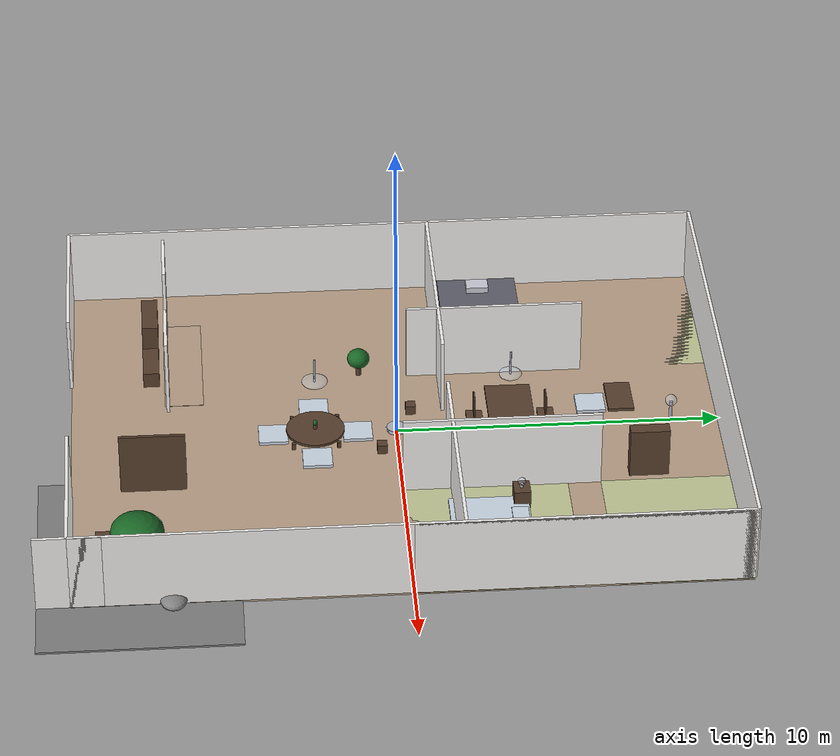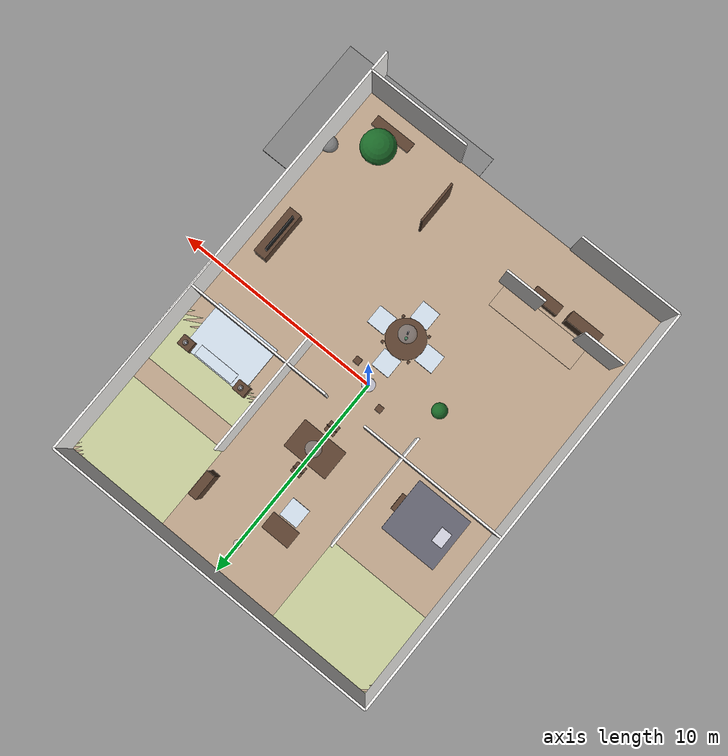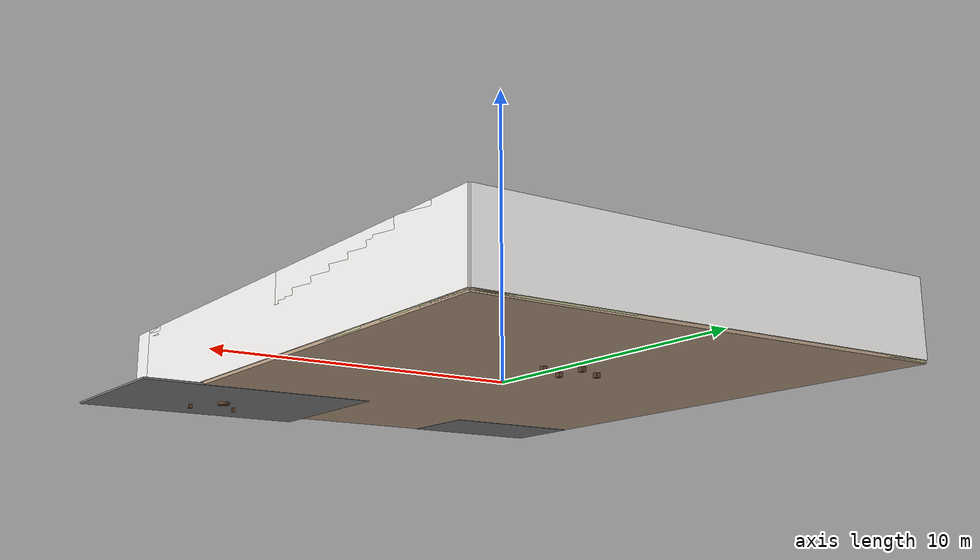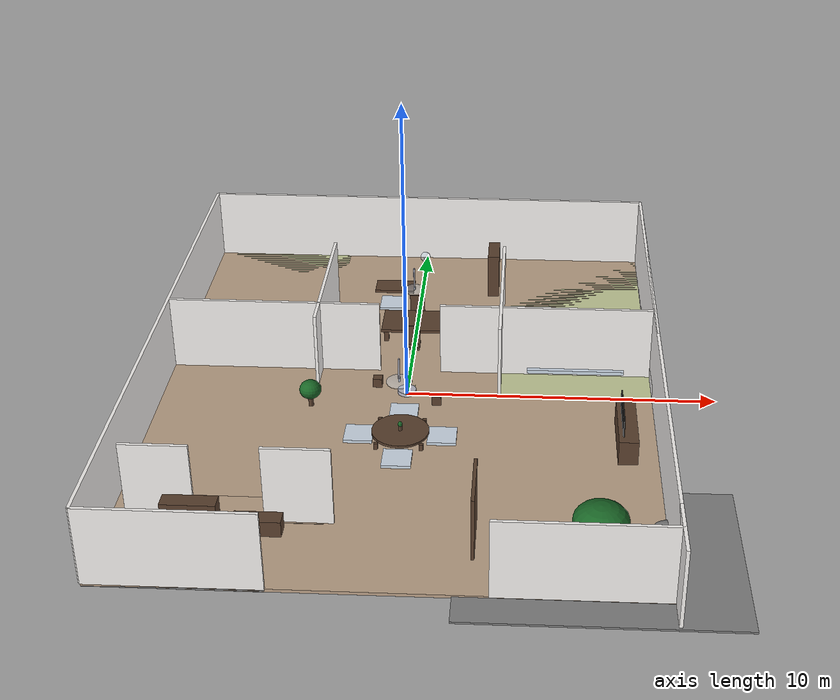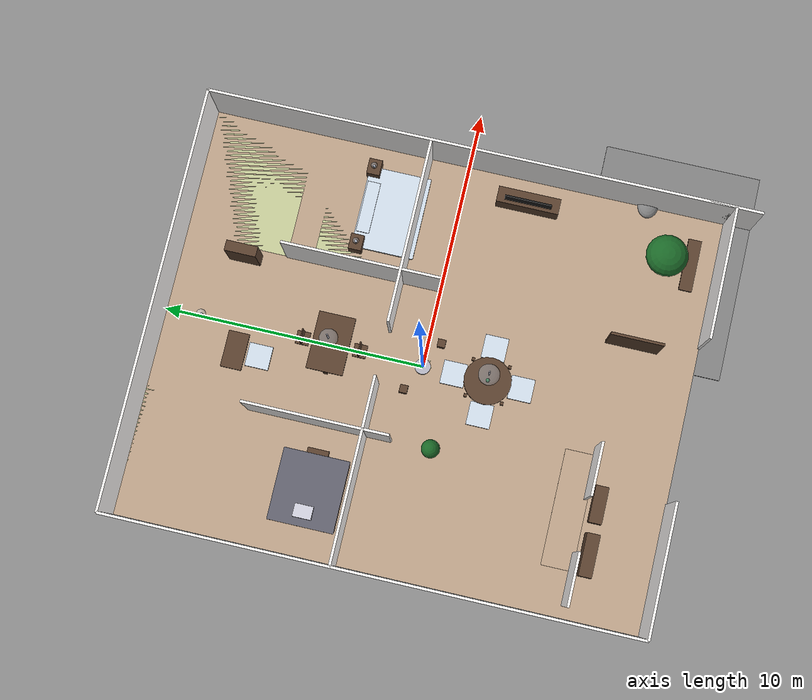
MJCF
<mujoco model="Japanese_320m2_Home">
  <compiler angle="degree" coordinate="local" inertiafromgeom="true"/>
  <option timestep="0.005" gravity="0 0 -9.81" density="1.2"/>

  <visual>
    <global offwidth="1920" offheight="1080" azimuth="140" elevation="-20"/>
    <quality shadowsize="4096"/>
    <map fogstart="25" fogend="40" znear="0.1"/>
  </visual>

  <default>
    <geom condim="3" friction="0.8 0.1 0.1" solimp="0.9 0.95 0.001" solref="0.02 1"/>
    <joint damping="1"/>
  </default>

  <asset>
    <texture name="tex_sky" type="skybox" builtin="gradient" rgb1="0.8 0.9 1.0" rgb2="0.6 0.8 0.9" width="512" height="512"/>

    <texture name="tex_floor_wood" type="2d" builtin="checker" rgb1="0.75 0.65 0.55" rgb2="0.7 0.6 0.5" width="512" height="512"/>
    <material name="mat_floor_wood" texture="tex_floor_wood" texrepeat="6 8" reflectance="0.2" specular="0.2"/>

    <texture name="tex_tatami" type="2d" builtin="checker" rgb1="0.78 0.8 0.6" rgb2="0.74 0.77 0.58" width="512" height="512"/>
    <material name="mat_tatami" texture="tex_tatami" texrepeat="8 8" reflectance="0.05" specular="0.05"/>

    <texture name="tex_tile" type="2d" builtin="checker" rgb1="0.4 0.4 0.45" rgb2="0.35 0.35 0.4" width="512" height="512"/>
    <material name="mat_tile" texture="tex_tile" texrepeat="8 8" reflectance="0.3" specular="0.3"/>

    <texture name="tex_wall" type="2d" builtin="flat" rgb1="0.96 0.95 0.94" width="512" height="512"/>
    <material name="mat_wall" texture="tex_wall" reflectance="0.1" specular="0.05"/>

    <material name="mat_wood_dark" rgba="0.35 0.25 0.18 1" reflectance="0.15" specular="0.2"/>
    <material name="mat_glass" rgba="0.8 0.9 1 0.3" reflectance="0.2" specular="0.4"/>
    <material name="mat_metal" rgba="0.7 0.7 0.75 1" reflectance="0.3" specular="0.5"/>
    <material name="mat_fabric" rgba="0.8 0.85 0.9 1" reflectance="0.05" specular="0.02"/>
    <material name="mat_stone" rgba="0.5 0.5 0.5 1" reflectance="0.1" specular="0.1"/>
    <material name="mat_plant" rgba="0.1 0.4 0.15 1" reflectance="0.1" specular="0.15"/>
  </asset>

  <worldbody>
    <light name="main_sun" directional="true" pos="-20 -15 30" dir="0.4 0.3 -1" diffuse="0.9 0.85 0.8" specular="0.3 0.3 0.3"/>
    <light name="fill_light" directional="true" pos="15 20 15" dir="-0.5 -0.5 -1" diffuse="0.4 0.4 0.45" specular="0.1 0.1 0.1"/>

    <!-- Base floor: 16m x 20m = 320 m^2 -->
    <geom name="floor_main" type="box" pos="0 0 -0.05" size="8 10 0.05" material="mat_floor_wood"/>

    <!-- Perimeter walls (2.5m high) -->
    <geom name="wall_north" type="box" pos="0 10 1.25" size="8 0.05 1.25" material="mat_wall"/>
    <geom name="wall_west"  type="box" pos="-8 0 1.25" size="0.05 10 1.25" material="mat_wall"/>
    <geom name="wall_east"  type="box" pos="8 0 1.25" size="0.05 10 1.25" material="mat_wall"/>

    <!-- Room zones: three bedrooms, two living areas, kitchen, genkan, new north room -->
    <geom name="zone_living_main"    type="box" pos="0 -2.5 -0.049" size="4.5 3   0.001" material="mat_floor_wood"/>
    <geom name="zone_living_second" type="box" pos="0  3.5 -0.049" size="4.5 2   0.001" material="mat_floor_wood"/>
    <geom name="zone_kitchen"       type="box" pos="-5.5 3 -0.049" size="2.5 2   0.001" material="mat_tile"/>
    <geom name="zone_bedroom_master" type="box" pos="5.5 2.5 -0.03" size="2.5 2.5 0.03"  material="mat_tatami"/>
    <geom name="zone_bedroom_west"   type="box" pos="-5.5 8 -0.03" size="2.5 2   0.03"  material="mat_tatami"/>
    <geom name="zone_bedroom_east"   type="box" pos="5.5 8 -0.03" size="2.5 2   0.03"  material="mat_tatami"/>
    <!-- New large room in the north-center (old courtyard/bath area integrated) -->
    <geom name="zone_room_north_center" type="box" pos="0 7 -0.049" size="3 3 0.001" material="mat_floor_wood"/>
    <geom name="zone_genkan"        type="box" pos="-5.5 -8.5 -0.08" size="2.5 1.5 0.03" material="mat_stone"/>

    <!-- New External Courtyard (Independent, connected to Living Room at South-East) -->
    <geom name="floor_courtyard_ext" type="box" pos="6 -8 -0.08" size="4 3 0.03" material="mat_stone"/>

    <!-- Internal partitions -->
    <!-- Kitchen / living partition on west side -->
    <geom name="partition_kitchen_living" type="box" pos="-3 3.25 1.25" size="0.05 2.75 1.25" material="mat_wall"/>
    <!-- North partition moved SOUTH (from y=5 to y=1.5) to expand the north room space -->
    <geom name="partition_hall_north_left"  type="box" pos="-4.5 1.5 1.25" size="3.5 0.05 1.25" material="mat_wall"/>
    <geom name="partition_hall_north_right" type="box" pos="4.5 1.5 1.25"  size="3.5 0.05 1.25" material="mat_wall"/>
    <!-- Partition between living/dining and master bedroom on east side -->
    <geom name="partition_living_master" type="box" pos="3 3 1.25" size="0.05 3 1.25" material="mat_wall"/>

    <!-- Partition between genkan (entrance) and main hall, leaving central opening -->
    <geom name="partition_genkan_hall_left"  type="box" pos="-6.5 -7 1.25" size="1 0.05 1.25" material="mat_wall"/>
    <geom name="partition_genkan_hall_right" type="box" pos="-2.5 -7 1.25" size="1 0.05 1.25" material="mat_wall"/>

    <!-- Entry opening in south wall -->
    <geom name="wall_south_left"  type="box" pos="-5.5 -10 1.25" size="2.5 0.05 1.25" material="mat_wall"/>
    <geom name="wall_south_right" type="box" pos="5.5 -10 1.25" size="2.5 0.05 1.25" material="mat_wall"/>
    <!-- Opening for new courtyard in east wall (lower part) -->
    <geom name="wall_east_upper"  type="box" pos="8 5 1.25" size="0.05 5 1.25" material="mat_wall"/>
    <geom name="wall_east_lower"  type="box" pos="8 -10 1.25" size="0.05 1 1.25" material="mat_wall"/>

    <body name="chabudai" pos="0 -2.5 0.2">
      <geom type="cylinder" size="0.9 0.04" material="mat_wood_dark"/>
      <geom type="box" pos="0.7 0.7 -0.14" size="0.06 0.06 0.14" material="mat_wood_dark"/>
      <geom type="box" pos="-0.7 0.7 -0.14" size="0.06 0.06 0.14" material="mat_wood_dark"/>
      <geom type="box" pos="0.7 -0.7 -0.14" size="0.06 0.06 0.14" material="mat_wood_dark"/>
      <geom type="box" pos="-0.7 -0.7 -0.14" size="0.06 0.06 0.14" material="mat_wood_dark"/>
    </body>

    <body name="vase_chabudai" pos="0 -2.5 0.32">
      <geom type="cylinder" size="0.06 0.08" material="mat_wood_dark"/>
      <geom type="ellipsoid" pos="0 0 0.12" size="0.07 0.07 0.1" material="mat_plant"/>
    </body>

    <body name="living_plant_corner" pos="-3 -1 0.35">
      <geom type="cylinder" size="0.08 0.25" material="mat_wood_dark"/>
      <geom type="ellipsoid" pos="0 0 0.35" size="0.35 0.35 0.3" material="mat_plant"/>
    </body>

    <body name="zabuton_1" pos="0 -1.2 0.05">
      <geom type="box" size="0.45 0.45 0.05" material="mat_fabric"/>
    </body>
    <body name="zabuton_2" pos="0 -3.8 0.05">
      <geom type="box" size="0.45 0.45 0.05" material="mat_fabric"/>
    </body>
    <body name="zabuton_3" pos="1.3 -2.5 0.05">
      <geom type="box" size="0.45 0.45 0.05" material="mat_fabric"/>
    </body>
    <body name="zabuton_4" pos="-1.3 -2.5 0.05">
      <geom type="box" size="0.45 0.45 0.05" material="mat_fabric"/>
    </body>

    <body name="tv_shelf" pos="7 -2.5 0.4">
      <geom type="box" size="0.3 1.2 0.4" material="mat_wood_dark"/>
      <geom type="box" pos="-0.15 0 0.6" size="0.02 0.9 0.35" rgba="0.1 0.1 0.1 1"/>
    </body>

    <body name="kitchen_block" pos="-5.5 3 0.45">
      <geom type="box" size="1.3 1.2 0.45" material="mat_wood_dark"/>
      <geom type="box" pos="0 0 0.47" size="1.35 1.25 0.03" material="mat_tile"/>
      <body name="kitchen_drawer" pos="1.2 0 0.3">
        <joint name="kitchen_drawer_slide" type="slide" axis="1 0 0" range="0 0.4" limited="true"/>
        <geom type="box" size="0.35 0.4 0.12" material="mat_wood_dark"/>
      </body>
      <geom type="box" pos="-0.8 0 0.6" size="0.25 0.35 0.1" rgba="0.8 0.8 0.85 1"/>
    </body>

    <body name="dining_table" pos="0 3.5 0.75">
      <geom type="box" size="1.1 0.7 0.05" material="mat_wood_dark"/>
      <geom type="box" pos="1.0 0 -0.5" size="0.08 0.08 0.5" material="mat_wood_dark"/>
      <geom type="box" pos="-1.0 0 -0.5" size="0.08 0.08 0.5" material="mat_wood_dark"/>
      <geom type="box" pos="0 0.55 -0.5" size="0.08 0.08 0.5" material="mat_wood_dark"/>
      <geom type="box" pos="0 -0.55 -0.5" size="0.08 0.08 0.5" material="mat_wood_dark"/>
    </body>

    <body name="dining_chair_1" pos="0 4.6 0.45">
      <geom type="box" size="0.25 0.25 0.05" material="mat_wood_dark"/>
      <geom type="box" pos="0 0 0.4" size="0.25 0.02 0.35" material="mat_wood_dark"/>
    </body>
    <body name="dining_chair_2" pos="0 2.4 0.45">
      <geom type="box" size="0.25 0.25 0.05" material="mat_wood_dark"/>
      <geom type="box" pos="0 0 0.4" size="0.25 0.02 0.35" material="mat_wood_dark"/>
    </body>

    <body name="chandelier_living" pos="0 -2.5 2.4">
      <geom type="cylinder" size="0.03 0.4" material="mat_metal"/>
      <geom type="ellipsoid" pos="0 0 -0.4" size="0.4 0.4 0.12" material="mat_glass"/>
    </body>

    <body name="chandelier_dining" pos="0 3.5 2.4">
      <geom type="cylinder" size="0.03 0.4" material="mat_metal"/>
      <geom type="ellipsoid" pos="0 0 -0.4" size="0.35 0.35 0.12" material="mat_glass"/>
    </body>

    <body name="futon" pos="5.5 2.5 0.18">
      <geom type="box" size="1.6 1.2 0.06" material="mat_fabric"/>
      <geom type="box" pos="0 0.9 0.07" size="1.0 0.25 0.04" material="mat_fabric"/>
    </body>

    <body name="bedside_left" pos="4 3.5 0.35">
      <geom type="box" size="0.3 0.25 0.3" material="mat_wood_dark"/>
      <geom type="cylinder" pos="0 0 0.35" size="0.05 0.08" material="mat_metal"/>
      <geom type="ellipsoid" pos="0 0 0.5" size="0.12 0.12 0.12" material="mat_glass"/>
    </body>

    <body name="bedside_right" pos="7 3.5 0.35">
      <geom type="box" size="0.3 0.25 0.3" material="mat_wood_dark"/>
      <geom type="cylinder" pos="0 0 0.35" size="0.05 0.08" material="mat_metal"/>
      <geom type="ellipsoid" pos="0 0 0.5" size="0.12 0.12 0.12" material="mat_glass"/>
    </body>

    <body name="washitsu_table" pos="-1 7 0.25">
      <geom type="box" size="0.7 0.4 0.05" material="mat_wood_dark"/>
    </body>
    <body name="washitsu_zabuton" pos="-1 6.1 0.05">
      <geom type="box" size="0.45 0.45 0.05" material="mat_fabric"/>
    </body>
    <body name="washitsu_shelf" pos="2.6 7.5 0.8">
      <geom type="box" size="0.2 0.6 0.8" material="mat_wood_dark"/>
    </body>
    <body name="washitsu_lamp" pos="0 8.5 0.4">
      <geom type="cylinder" size="0.05 0.3" material="mat_metal"/>
      <geom type="ellipsoid" pos="0 0 0.35" size="0.18 0.18 0.18" material="mat_glass"/>
    </body>

    <!-- Toilet room removed, old bath/toilet bodies removed -->

    <!-- Genkan step at entrance -->
    <body name="genkan_step" pos="-4 -6.5 -0.02">
      <geom type="box" size="2.2 0.6 0.03" material="mat_floor_wood"/>
    </body>
    <body name="genkan_shoe_cabinet" pos="-5.5 -7.5 0.5">
      <geom type="box" size="0.8 0.25 0.5" material="mat_wood_dark"/>
    </body>
    <body name="genkan_bench" pos="-3.6 -7.5 0.25">
      <geom type="box" size="0.7 0.25 0.25" material="mat_wood_dark"/>
    </body>
    <body name="corridor_screen" pos="2.5 -7.5 1">
      <geom type="box" size="0.05 1 1" material="mat_wood_dark"/>
    </body>

    <!-- New External Courtyard Elements (Outside east wall) -->
    <body name="courtyard_tree" pos="6 -8 0.3">
      <geom type="cylinder" size="0.2 0.5" material="mat_wood_dark"/>
      <geom type="ellipsoid" pos="0 0 0.8" size="0.8 0.8 0.5" material="mat_plant"/>
    </body>
    <body name="courtyard_rock" pos="8 -7 0.1">
      <geom type="ellipsoid" size="0.5 0.4 0.2" material="mat_stone"/>
    </body>
    <body name="courtyard_bench" pos="6 -9 0.35">
      <geom type="box" size="1.0 0.25 0.05" material="mat_wood_dark"/>
      <geom type="box" pos="0.8 0 -0.3" size="0.05 0.05 0.3" material="mat_wood_dark"/>
      <geom type="box" pos="-0.8 0 -0.3" size="0.05 0.05 0.3" material="mat_wood_dark"/>
    </body>

    <!-- Interactive movable blocks in living room for robot to push -->
    <body name="block_1" pos="-1 0.5 0.15">
      <freejoint/>
      <geom type="box" size="0.15 0.15 0.15" material="mat_wood_dark" mass="1"/>
    </body>
    <body name="block_2" pos="1 -0.5 0.15">
      <freejoint/>
      <geom type="box" size="0.15 0.15 0.15" material="mat_wood_dark" mass="1"/>
    </body>

    <!-- New autonomous vacuum-style cleaning robot on central free space -->
    <!-- Fixed: Lowered base to 0.06 so wheels touch ground (radius 0.06) -->
    <!-- Shifted body geoms up by 0.02 to provide ground clearance -->
    <!-- Raised to 0.1 to prevent floor clipping on spawn -->
    <body name="vacuum_base" pos="0 0 0.1">
      <freejoint/>
      <geom name="vacuum_body" type="cylinder" pos="0 0 0.02" size="0.3 0.06" material="mat_metal" mass="4"/>
      <!-- Bumper removed as requested -->
      <!-- Drive wheels - Converted to spheres (Ball wheels) for smooth movement -->
      <body name="vacuum_wheel_left" pos="0 0.22 0">
        <joint name="vacuum_wheel_left_hinge" type="hinge" axis="0 1 0"/>
        <geom type="sphere" size="0.06" material="mat_metal" mass="0.2" friction="1.5 0.005 0.0001"/>
      </body>
      <body name="vacuum_wheel_right" pos="0 -0.22 0">
        <joint name="vacuum_wheel_right_hinge" type="hinge" axis="0 1 0"/>
        <geom type="sphere" size="0.06" material="mat_metal" mass="0.2" friction="1.5 0.005 0.0001"/>
      </body>

      <!-- Caster wheels to prevent body dragging (frictionless spheres) -->
      <geom name="caster_front" type="sphere" pos="0.25 0 -0.01" size="0.05" rgba="0.5 0.5 0.5 1" friction="0 0 0" mass="0.1"/>
      <geom name="caster_back"  type="sphere" pos="-0.25 0 -0.01" size="0.05" rgba="0.5 0.5 0.5 1" friction="0 0 0" mass="0.1"/>

      <!-- Rangefinder sensor sites for obstacle avoidance -->
      <site name="vacuum_rf_front"  pos="0.32 0 0.08" size="0.02" type="ellipsoid" rgba="0 1 0 0.4"/>
          <site name="vacuum_rf_front_left"  pos="0.25 0.25 0.08" size="0.02" type="ellipsoid" rgba="0 1 0 0.4" zaxis="1 1 0"/>
          <site name="vacuum_rf_front_right" pos="0.25 -0.25 0.08" size="0.02" type="ellipsoid" rgba="0 1 0 0.4" zaxis="1 -1 0"/>
          <site name="vacuum_rf_back"   pos="-0.32 0 0.08" size="0.02" type="ellipsoid" rgba="0 1 0 0.4"/>
      <site name="vacuum_rf_left"   pos="0 0.32 0.08" size="0.02" type="ellipsoid" rgba="0 1 0 0.4"/>
      <site name="vacuum_rf_right"  pos="0 -0.32 0.08" size="0.02" type="ellipsoid" rgba="0 1 0 0.4"/>
    </body>

  </worldbody>

  <actuator>
    <!-- Reduced gear from 100 to 30 to prevent wheel spin and over-speeding -->
    <motor name="vacuum_motor_left"  joint="vacuum_wheel_left_hinge"  gear="50"/>
    <motor name="vacuum_motor_right" joint="vacuum_wheel_right_hinge" gear="50"/>
  </actuator>

  <sensor>
    <rangefinder name="rf_front" site="vacuum_rf_front"/>
    <rangefinder name="rf_front_left" site="vacuum_rf_front_left"/>
    <rangefinder name="rf_front_right" site="vacuum_rf_front_right"/>
    <rangefinder name="rf_back"  site="vacuum_rf_back"/>
    <rangefinder name="rf_left"  site="vacuum_rf_left"/>
    <rangefinder name="rf_right" site="vacuum_rf_right"/>
  </sensor>
</mujoco>
